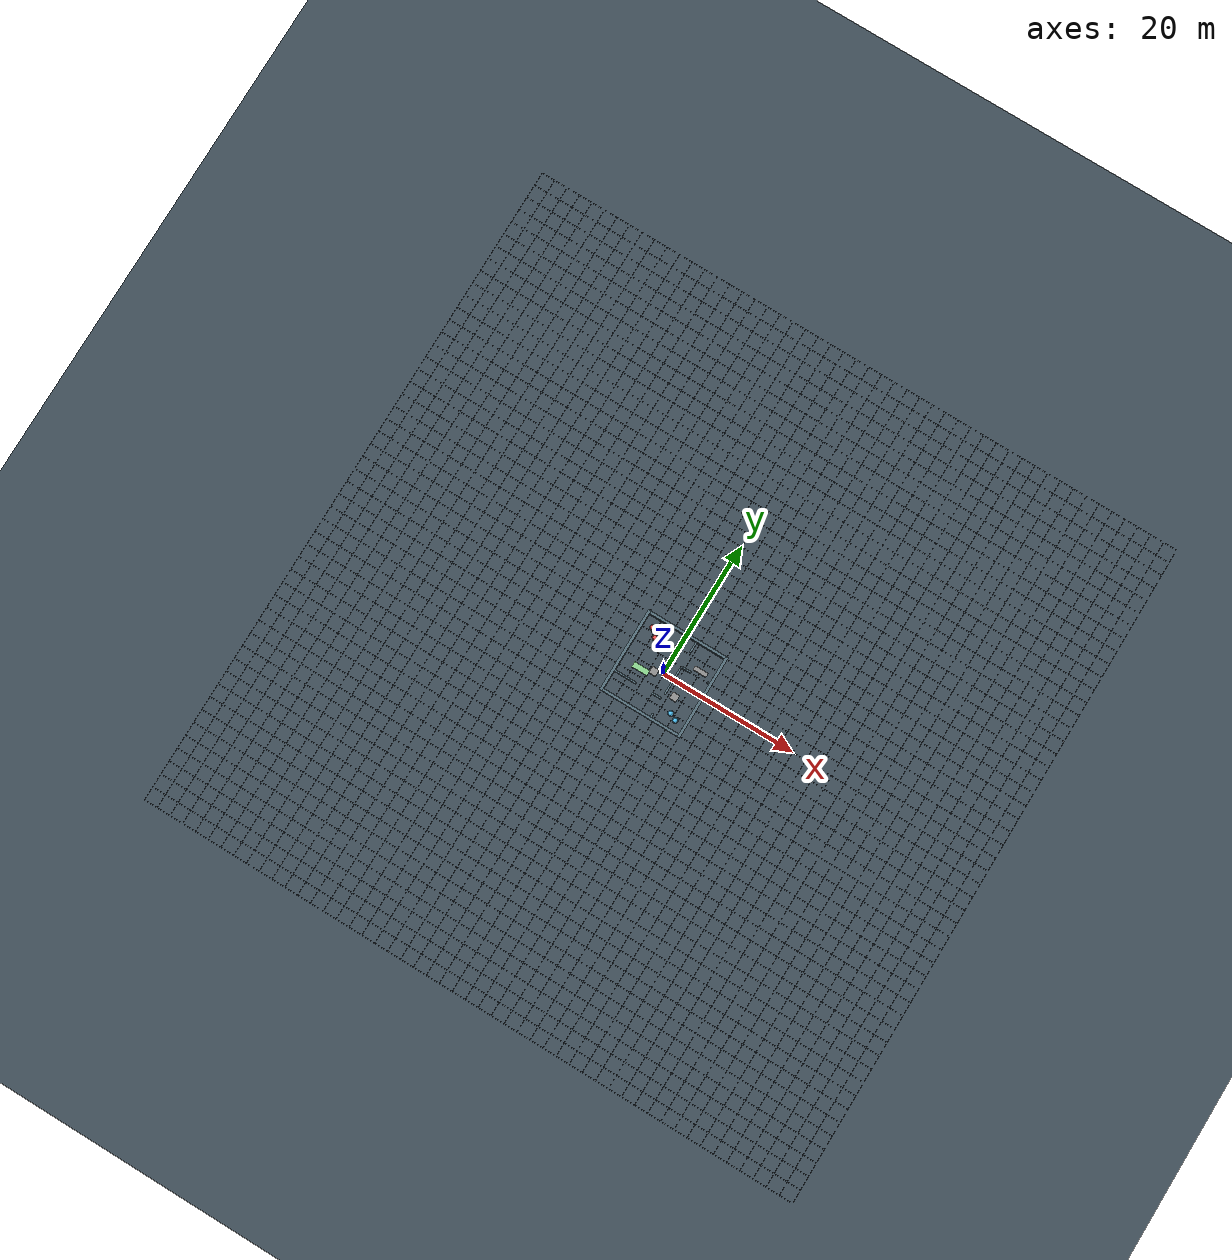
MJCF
<mujoco model="hide_and_seek">
  <compiler angle="radian" coordinate="local" inertiafromgeom="true"/>

  <option timestep="0.02" gravity="0 0 -9.81" integrator="implicitfast"
          solver="Newton" iterations="30" tolerance="1e-8" impratio="10">
    <flag warmstart="enable"/>
  </option>

  <default>
    <geom condim="6" friction="0.4 0.3 0.1" margin="0.001"/>
    <joint damping="0.5" armature="0.01"/>
    <motor ctrllimited="true" ctrlrange="-1.0 1.0"/>
  </default>

  <!-- ═══════════════════ ASSETS ═══════════════════ -->
  <asset>
    <!-- Sky: dark indigo #2a2a3e -->
    <texture type="skybox" builtin="gradient"
             rgb1="0.165 0.165 0.243" rgb2="0.06 0.06 0.10"
             width="512" height="512"/>
    <!-- Ground: uniform grey tile -->
    <texture name="groundplane" type="2d" builtin="flat"
             rgb1="0.24 0.30 0.34" rgb2="0.24 0.30 0.34"
             width="64" height="64"/>
    <material name="groundplane" texture="groundplane"
              texuniform="true" reflectance="0" shininess="0"
              specular="0" emission="0"/>
    <!-- Walls: slate #546e7a -->
    <material name="wall_mat"   rgba="0.329 0.431 0.478 1" reflectance="0.12" shininess="0.15"/>
    <!-- Hiders: cyan #4fc3f7 -->
    <material name="hider_mat"  rgba="0.310 0.765 0.969 1" reflectance="0.30" shininess="0.6" specular="0.4"/>
    <!-- Seekers: red #ef5350 -->
    <material name="seeker_mat" rgba="0.937 0.325 0.314 1" reflectance="0.30" shininess="0.6" specular="0.4"/>
    <!-- Boxes: grey #8d8d8d -->
    <material name="box_mat"    rgba="0.553 0.553 0.553 1" reflectance="0.08" shininess="0.15"/>
    <!-- Ramps: green #81c784 -->
    <material name="ramp_mat"   rgba="0.506 0.780 0.518 1" reflectance="0.08" shininess="0.15"/>
    <!-- Locked: magenta -->
    <material name="locked_mat" rgba="0.85 0.20 0.85 1" reflectance="0.20" shininess="0.4"/>
    <!-- Ramp wedge mesh (triangular prism — convex hull of 6 vertices) -->
    <mesh name="ramp_wedge_0"
          vertex="-1.2000 -0.4000 -0.2833  -1.2000  0.4000 -0.2833
                   1.2000 -0.4000 -0.2833   1.2000  0.4000 -0.2833
                   1.2000 -0.4000  0.5667   1.2000  0.4000  0.5667"/>
  </asset>

  <!-- ═══════════════════ VISUAL ═══════════════════ -->
  <visual>
    <global offwidth="1920" offheight="1080"/>
    <quality shadowsize="4096"/>
    <headlight ambient="0.35 0.35 0.38" diffuse="0.30 0.30 0.33" specular="0.08 0.08 0.08"/>
  </visual>

  <!-- ═══════════════════ WORLD ═══════════════════ -->
  <worldbody>

    <!-- Ground plane (extends far to hide skybox at horizon) -->
    <geom name="floor" type="plane" size="200 200 0.1" material="groundplane" conaffinity="1" condim="6"/>

    <!-- Tile grid lines (OpenAI-style seams) -->
    <geom name="gridY_0" type="box" pos="0 -50.00 0.002" size="50.0 0.02 0.002" rgba="0.10 0.12 0.15 1" contype="0" conaffinity="0"/>
    <geom name="gridY_1" type="box" pos="0 -48.00 0.002" size="50.0 0.02 0.002" rgba="0.10 0.12 0.15 1" contype="0" conaffinity="0"/>
    <geom name="gridY_2" type="box" pos="0 -46.00 0.002" size="50.0 0.02 0.002" rgba="0.10 0.12 0.15 1" contype="0" conaffinity="0"/>
    <geom name="gridY_3" type="box" pos="0 -44.00 0.002" size="50.0 0.02 0.002" rgba="0.10 0.12 0.15 1" contype="0" conaffinity="0"/>
    <geom name="gridY_4" type="box" pos="0 -42.00 0.002" size="50.0 0.02 0.002" rgba="0.10 0.12 0.15 1" contype="0" conaffinity="0"/>
    <geom name="gridY_5" type="box" pos="0 -40.00 0.002" size="50.0 0.02 0.002" rgba="0.10 0.12 0.15 1" contype="0" conaffinity="0"/>
    <geom name="gridY_6" type="box" pos="0 -38.00 0.002" size="50.0 0.02 0.002" rgba="0.10 0.12 0.15 1" contype="0" conaffinity="0"/>
    <geom name="gridY_7" type="box" pos="0 -36.00 0.002" size="50.0 0.02 0.002" rgba="0.10 0.12 0.15 1" contype="0" conaffinity="0"/>
    <geom name="gridY_8" type="box" pos="0 -34.00 0.002" size="50.0 0.02 0.002" rgba="0.10 0.12 0.15 1" contype="0" conaffinity="0"/>
    <geom name="gridY_9" type="box" pos="0 -32.00 0.002" size="50.0 0.02 0.002" rgba="0.10 0.12 0.15 1" contype="0" conaffinity="0"/>
    <geom name="gridY_10" type="box" pos="0 -30.00 0.002" size="50.0 0.02 0.002" rgba="0.10 0.12 0.15 1" contype="0" conaffinity="0"/>
    <geom name="gridY_11" type="box" pos="0 -28.00 0.002" size="50.0 0.02 0.002" rgba="0.10 0.12 0.15 1" contype="0" conaffinity="0"/>
    <geom name="gridY_12" type="box" pos="0 -26.00 0.002" size="50.0 0.02 0.002" rgba="0.10 0.12 0.15 1" contype="0" conaffinity="0"/>
    <geom name="gridY_13" type="box" pos="0 -24.00 0.002" size="50.0 0.02 0.002" rgba="0.10 0.12 0.15 1" contype="0" conaffinity="0"/>
    <geom name="gridY_14" type="box" pos="0 -22.00 0.002" size="50.0 0.02 0.002" rgba="0.10 0.12 0.15 1" contype="0" conaffinity="0"/>
    <geom name="gridY_15" type="box" pos="0 -20.00 0.002" size="50.0 0.02 0.002" rgba="0.10 0.12 0.15 1" contype="0" conaffinity="0"/>
    <geom name="gridY_16" type="box" pos="0 -18.00 0.002" size="50.0 0.02 0.002" rgba="0.10 0.12 0.15 1" contype="0" conaffinity="0"/>
    <geom name="gridY_17" type="box" pos="0 -16.00 0.002" size="50.0 0.02 0.002" rgba="0.10 0.12 0.15 1" contype="0" conaffinity="0"/>
    <geom name="gridY_18" type="box" pos="0 -14.00 0.002" size="50.0 0.02 0.002" rgba="0.10 0.12 0.15 1" contype="0" conaffinity="0"/>
    <geom name="gridY_19" type="box" pos="0 -12.00 0.002" size="50.0 0.02 0.002" rgba="0.10 0.12 0.15 1" contype="0" conaffinity="0"/>
    <geom name="gridY_20" type="box" pos="0 -10.00 0.002" size="50.0 0.02 0.002" rgba="0.10 0.12 0.15 1" contype="0" conaffinity="0"/>
    <geom name="gridY_21" type="box" pos="0 -8.00 0.002" size="50.0 0.02 0.002" rgba="0.10 0.12 0.15 1" contype="0" conaffinity="0"/>
    <geom name="gridY_22" type="box" pos="0 -6.00 0.002" size="50.0 0.02 0.002" rgba="0.10 0.12 0.15 1" contype="0" conaffinity="0"/>
    <geom name="gridY_23" type="box" pos="0 -4.00 0.002" size="50.0 0.02 0.002" rgba="0.10 0.12 0.15 1" contype="0" conaffinity="0"/>
    <geom name="gridY_24" type="box" pos="0 -2.00 0.002" size="50.0 0.02 0.002" rgba="0.10 0.12 0.15 1" contype="0" conaffinity="0"/>
    <geom name="gridY_25" type="box" pos="0 0.00 0.002" size="50.0 0.02 0.002" rgba="0.10 0.12 0.15 1" contype="0" conaffinity="0"/>
    <geom name="gridY_26" type="box" pos="0 2.00 0.002" size="50.0 0.02 0.002" rgba="0.10 0.12 0.15 1" contype="0" conaffinity="0"/>
    <geom name="gridY_27" type="box" pos="0 4.00 0.002" size="50.0 0.02 0.002" rgba="0.10 0.12 0.15 1" contype="0" conaffinity="0"/>
    <geom name="gridY_28" type="box" pos="0 6.00 0.002" size="50.0 0.02 0.002" rgba="0.10 0.12 0.15 1" contype="0" conaffinity="0"/>
    <geom name="gridY_29" type="box" pos="0 8.00 0.002" size="50.0 0.02 0.002" rgba="0.10 0.12 0.15 1" contype="0" conaffinity="0"/>
    <geom name="gridY_30" type="box" pos="0 10.00 0.002" size="50.0 0.02 0.002" rgba="0.10 0.12 0.15 1" contype="0" conaffinity="0"/>
    <geom name="gridY_31" type="box" pos="0 12.00 0.002" size="50.0 0.02 0.002" rgba="0.10 0.12 0.15 1" contype="0" conaffinity="0"/>
    <geom name="gridY_32" type="box" pos="0 14.00 0.002" size="50.0 0.02 0.002" rgba="0.10 0.12 0.15 1" contype="0" conaffinity="0"/>
    <geom name="gridY_33" type="box" pos="0 16.00 0.002" size="50.0 0.02 0.002" rgba="0.10 0.12 0.15 1" contype="0" conaffinity="0"/>
    <geom name="gridY_34" type="box" pos="0 18.00 0.002" size="50.0 0.02 0.002" rgba="0.10 0.12 0.15 1" contype="0" conaffinity="0"/>
    <geom name="gridY_35" type="box" pos="0 20.00 0.002" size="50.0 0.02 0.002" rgba="0.10 0.12 0.15 1" contype="0" conaffinity="0"/>
    <geom name="gridY_36" type="box" pos="0 22.00 0.002" size="50.0 0.02 0.002" rgba="0.10 0.12 0.15 1" contype="0" conaffinity="0"/>
    <geom name="gridY_37" type="box" pos="0 24.00 0.002" size="50.0 0.02 0.002" rgba="0.10 0.12 0.15 1" contype="0" conaffinity="0"/>
    <geom name="gridY_38" type="box" pos="0 26.00 0.002" size="50.0 0.02 0.002" rgba="0.10 0.12 0.15 1" contype="0" conaffinity="0"/>
    <geom name="gridY_39" type="box" pos="0 28.00 0.002" size="50.0 0.02 0.002" rgba="0.10 0.12 0.15 1" contype="0" conaffinity="0"/>
    <geom name="gridY_40" type="box" pos="0 30.00 0.002" size="50.0 0.02 0.002" rgba="0.10 0.12 0.15 1" contype="0" conaffinity="0"/>
    <geom name="gridY_41" type="box" pos="0 32.00 0.002" size="50.0 0.02 0.002" rgba="0.10 0.12 0.15 1" contype="0" conaffinity="0"/>
    <geom name="gridY_42" type="box" pos="0 34.00 0.002" size="50.0 0.02 0.002" rgba="0.10 0.12 0.15 1" contype="0" conaffinity="0"/>
    <geom name="gridY_43" type="box" pos="0 36.00 0.002" size="50.0 0.02 0.002" rgba="0.10 0.12 0.15 1" contype="0" conaffinity="0"/>
    <geom name="gridY_44" type="box" pos="0 38.00 0.002" size="50.0 0.02 0.002" rgba="0.10 0.12 0.15 1" contype="0" conaffinity="0"/>
    <geom name="gridY_45" type="box" pos="0 40.00 0.002" size="50.0 0.02 0.002" rgba="0.10 0.12 0.15 1" contype="0" conaffinity="0"/>
    <geom name="gridY_46" type="box" pos="0 42.00 0.002" size="50.0 0.02 0.002" rgba="0.10 0.12 0.15 1" contype="0" conaffinity="0"/>
    <geom name="gridY_47" type="box" pos="0 44.00 0.002" size="50.0 0.02 0.002" rgba="0.10 0.12 0.15 1" contype="0" conaffinity="0"/>
    <geom name="gridY_48" type="box" pos="0 46.00 0.002" size="50.0 0.02 0.002" rgba="0.10 0.12 0.15 1" contype="0" conaffinity="0"/>
    <geom name="gridY_49" type="box" pos="0 48.00 0.002" size="50.0 0.02 0.002" rgba="0.10 0.12 0.15 1" contype="0" conaffinity="0"/>
    <geom name="gridY_50" type="box" pos="0 50.00 0.002" size="50.0 0.02 0.002" rgba="0.10 0.12 0.15 1" contype="0" conaffinity="0"/>
    <geom name="gridX_51" type="box" pos="-50.00 0 0.002" size="0.02 50.0 0.002" rgba="0.10 0.12 0.15 1" contype="0" conaffinity="0"/>
    <geom name="gridX_52" type="box" pos="-48.00 0 0.002" size="0.02 50.0 0.002" rgba="0.10 0.12 0.15 1" contype="0" conaffinity="0"/>
    <geom name="gridX_53" type="box" pos="-46.00 0 0.002" size="0.02 50.0 0.002" rgba="0.10 0.12 0.15 1" contype="0" conaffinity="0"/>
    <geom name="gridX_54" type="box" pos="-44.00 0 0.002" size="0.02 50.0 0.002" rgba="0.10 0.12 0.15 1" contype="0" conaffinity="0"/>
    <geom name="gridX_55" type="box" pos="-42.00 0 0.002" size="0.02 50.0 0.002" rgba="0.10 0.12 0.15 1" contype="0" conaffinity="0"/>
    <geom name="gridX_56" type="box" pos="-40.00 0 0.002" size="0.02 50.0 0.002" rgba="0.10 0.12 0.15 1" contype="0" conaffinity="0"/>
    <geom name="gridX_57" type="box" pos="-38.00 0 0.002" size="0.02 50.0 0.002" rgba="0.10 0.12 0.15 1" contype="0" conaffinity="0"/>
    <geom name="gridX_58" type="box" pos="-36.00 0 0.002" size="0.02 50.0 0.002" rgba="0.10 0.12 0.15 1" contype="0" conaffinity="0"/>
    <geom name="gridX_59" type="box" pos="-34.00 0 0.002" size="0.02 50.0 0.002" rgba="0.10 0.12 0.15 1" contype="0" conaffinity="0"/>
    <geom name="gridX_60" type="box" pos="-32.00 0 0.002" size="0.02 50.0 0.002" rgba="0.10 0.12 0.15 1" contype="0" conaffinity="0"/>
    <geom name="gridX_61" type="box" pos="-30.00 0 0.002" size="0.02 50.0 0.002" rgba="0.10 0.12 0.15 1" contype="0" conaffinity="0"/>
    <geom name="gridX_62" type="box" pos="-28.00 0 0.002" size="0.02 50.0 0.002" rgba="0.10 0.12 0.15 1" contype="0" conaffinity="0"/>
    <geom name="gridX_63" type="box" pos="-26.00 0 0.002" size="0.02 50.0 0.002" rgba="0.10 0.12 0.15 1" contype="0" conaffinity="0"/>
    <geom name="gridX_64" type="box" pos="-24.00 0 0.002" size="0.02 50.0 0.002" rgba="0.10 0.12 0.15 1" contype="0" conaffinity="0"/>
    <geom name="gridX_65" type="box" pos="-22.00 0 0.002" size="0.02 50.0 0.002" rgba="0.10 0.12 0.15 1" contype="0" conaffinity="0"/>
    <geom name="gridX_66" type="box" pos="-20.00 0 0.002" size="0.02 50.0 0.002" rgba="0.10 0.12 0.15 1" contype="0" conaffinity="0"/>
    <geom name="gridX_67" type="box" pos="-18.00 0 0.002" size="0.02 50.0 0.002" rgba="0.10 0.12 0.15 1" contype="0" conaffinity="0"/>
    <geom name="gridX_68" type="box" pos="-16.00 0 0.002" size="0.02 50.0 0.002" rgba="0.10 0.12 0.15 1" contype="0" conaffinity="0"/>
    <geom name="gridX_69" type="box" pos="-14.00 0 0.002" size="0.02 50.0 0.002" rgba="0.10 0.12 0.15 1" contype="0" conaffinity="0"/>
    <geom name="gridX_70" type="box" pos="-12.00 0 0.002" size="0.02 50.0 0.002" rgba="0.10 0.12 0.15 1" contype="0" conaffinity="0"/>
    <geom name="gridX_71" type="box" pos="-10.00 0 0.002" size="0.02 50.0 0.002" rgba="0.10 0.12 0.15 1" contype="0" conaffinity="0"/>
    <geom name="gridX_72" type="box" pos="-8.00 0 0.002" size="0.02 50.0 0.002" rgba="0.10 0.12 0.15 1" contype="0" conaffinity="0"/>
    <geom name="gridX_73" type="box" pos="-6.00 0 0.002" size="0.02 50.0 0.002" rgba="0.10 0.12 0.15 1" contype="0" conaffinity="0"/>
    <geom name="gridX_74" type="box" pos="-4.00 0 0.002" size="0.02 50.0 0.002" rgba="0.10 0.12 0.15 1" contype="0" conaffinity="0"/>
    <geom name="gridX_75" type="box" pos="-2.00 0 0.002" size="0.02 50.0 0.002" rgba="0.10 0.12 0.15 1" contype="0" conaffinity="0"/>
    <geom name="gridX_76" type="box" pos="0.00 0 0.002" size="0.02 50.0 0.002" rgba="0.10 0.12 0.15 1" contype="0" conaffinity="0"/>
    <geom name="gridX_77" type="box" pos="2.00 0 0.002" size="0.02 50.0 0.002" rgba="0.10 0.12 0.15 1" contype="0" conaffinity="0"/>
    <geom name="gridX_78" type="box" pos="4.00 0 0.002" size="0.02 50.0 0.002" rgba="0.10 0.12 0.15 1" contype="0" conaffinity="0"/>
    <geom name="gridX_79" type="box" pos="6.00 0 0.002" size="0.02 50.0 0.002" rgba="0.10 0.12 0.15 1" contype="0" conaffinity="0"/>
    <geom name="gridX_80" type="box" pos="8.00 0 0.002" size="0.02 50.0 0.002" rgba="0.10 0.12 0.15 1" contype="0" conaffinity="0"/>
    <geom name="gridX_81" type="box" pos="10.00 0 0.002" size="0.02 50.0 0.002" rgba="0.10 0.12 0.15 1" contype="0" conaffinity="0"/>
    <geom name="gridX_82" type="box" pos="12.00 0 0.002" size="0.02 50.0 0.002" rgba="0.10 0.12 0.15 1" contype="0" conaffinity="0"/>
    <geom name="gridX_83" type="box" pos="14.00 0 0.002" size="0.02 50.0 0.002" rgba="0.10 0.12 0.15 1" contype="0" conaffinity="0"/>
    <geom name="gridX_84" type="box" pos="16.00 0 0.002" size="0.02 50.0 0.002" rgba="0.10 0.12 0.15 1" contype="0" conaffinity="0"/>
    <geom name="gridX_85" type="box" pos="18.00 0 0.002" size="0.02 50.0 0.002" rgba="0.10 0.12 0.15 1" contype="0" conaffinity="0"/>
    <geom name="gridX_86" type="box" pos="20.00 0 0.002" size="0.02 50.0 0.002" rgba="0.10 0.12 0.15 1" contype="0" conaffinity="0"/>
    <geom name="gridX_87" type="box" pos="22.00 0 0.002" size="0.02 50.0 0.002" rgba="0.10 0.12 0.15 1" contype="0" conaffinity="0"/>
    <geom name="gridX_88" type="box" pos="24.00 0 0.002" size="0.02 50.0 0.002" rgba="0.10 0.12 0.15 1" contype="0" conaffinity="0"/>
    <geom name="gridX_89" type="box" pos="26.00 0 0.002" size="0.02 50.0 0.002" rgba="0.10 0.12 0.15 1" contype="0" conaffinity="0"/>
    <geom name="gridX_90" type="box" pos="28.00 0 0.002" size="0.02 50.0 0.002" rgba="0.10 0.12 0.15 1" contype="0" conaffinity="0"/>
    <geom name="gridX_91" type="box" pos="30.00 0 0.002" size="0.02 50.0 0.002" rgba="0.10 0.12 0.15 1" contype="0" conaffinity="0"/>
    <geom name="gridX_92" type="box" pos="32.00 0 0.002" size="0.02 50.0 0.002" rgba="0.10 0.12 0.15 1" contype="0" conaffinity="0"/>
    <geom name="gridX_93" type="box" pos="34.00 0 0.002" size="0.02 50.0 0.002" rgba="0.10 0.12 0.15 1" contype="0" conaffinity="0"/>
    <geom name="gridX_94" type="box" pos="36.00 0 0.002" size="0.02 50.0 0.002" rgba="0.10 0.12 0.15 1" contype="0" conaffinity="0"/>
    <geom name="gridX_95" type="box" pos="38.00 0 0.002" size="0.02 50.0 0.002" rgba="0.10 0.12 0.15 1" contype="0" conaffinity="0"/>
    <geom name="gridX_96" type="box" pos="40.00 0 0.002" size="0.02 50.0 0.002" rgba="0.10 0.12 0.15 1" contype="0" conaffinity="0"/>
    <geom name="gridX_97" type="box" pos="42.00 0 0.002" size="0.02 50.0 0.002" rgba="0.10 0.12 0.15 1" contype="0" conaffinity="0"/>
    <geom name="gridX_98" type="box" pos="44.00 0 0.002" size="0.02 50.0 0.002" rgba="0.10 0.12 0.15 1" contype="0" conaffinity="0"/>
    <geom name="gridX_99" type="box" pos="46.00 0 0.002" size="0.02 50.0 0.002" rgba="0.10 0.12 0.15 1" contype="0" conaffinity="0"/>
    <geom name="gridX_100" type="box" pos="48.00 0 0.002" size="0.02 50.0 0.002" rgba="0.10 0.12 0.15 1" contype="0" conaffinity="0"/>
    <geom name="gridX_101" type="box" pos="50.00 0 0.002" size="0.02 50.0 0.002" rgba="0.10 0.12 0.15 1" contype="0" conaffinity="0"/>

    <!-- Lighting (warm key + cool fill, matching HTML mockup's #fff5e0 sun) -->
    <light name="key_light"  pos="5 -5 14" dir="-0.3 0.3 -1"
           diffuse="1.0 0.96 0.88" specular="0.45 0.43 0.40" cutoff="60" castshadow="true"/>
    <light name="fill_light" pos="-5 5 10" dir="0.3 -0.3 -1"
           diffuse="0.28 0.30 0.38" specular="0.06 0.06 0.08" cutoff="80"/>
    <light name="rim_light"  pos="0 0 16"  dir="0 0 -1"
           diffuse="0.18 0.18 0.22" specular="0.12 0.12 0.12" cutoff="100"/>

    <!-- Overview camera — shows the full arena without needing to zoom out -->
    <camera name="overview" pos="0 -12 20" xyaxes="1 0 0 0 0.55 0.84" fovy="55"/>

    <!-- ────────────── OUTER ARENA WALLS (12m × 12m, tall — 2.4m) ────────────── -->
    <!--  wall color: #546e7a → rgba="0.329 0.431 0.478 1" -->
    <body name="wall_north" pos="0 6 0.7">
      <geom type="box" size="5.80 0.2 0.7" rgba="0.329 0.431 0.478 1" conaffinity="1" condim="3"/>
    </body>
    <body name="wall_south" pos="0 -6 0.7">
      <geom type="box" size="5.80 0.2 0.7" rgba="0.329 0.431 0.478 1" conaffinity="1" condim="3"/>
    </body>
    <body name="wall_east" pos="6 0 0.7">
      <geom type="box" size="0.2 6.20 0.7" rgba="0.329 0.431 0.478 1" conaffinity="1" condim="3"/>
    </body>
    <body name="wall_west" pos="-6 0 0.7">
      <geom type="box" size="0.2 6.20 0.7" rgba="0.329 0.431 0.478 1" conaffinity="1" condim="3"/>
    </body>

    <!-- ── Vertical wall: x=1.5, y=-6 to y=6, two doors ── -->

    <!-- Seg 1: y=-6 to y=-5.25 -->
    <body name="vwall_s" pos="1.5 -5.625 0.500">
      <geom type="box" size="0.12 0.375 0.500" rgba="0.329 0.431 0.478 1" conaffinity="1" condim="3"/>
    </body>
    <!-- DOOR: y=-5.25 to y=-2.25  (3.0m gap — lower door) -->
    <!-- Seg 2: y=-2.25 to y=1.75  (shortened center, wider gap above) -->
    <body name="vwall_mid" pos="1.5 -0.25 0.500">
      <geom type="box" size="0.12 2.0 0.500" rgba="0.329 0.431 0.478 1" conaffinity="1" condim="3"/>
    </body>
    <!-- DOOR: y=1.75 to y=4.25   (2.5m gap — upper door) -->
    <!-- Seg 3: y=4.25 to y=6 -->
    <body name="vwall_n" pos="1.5 5.125 0.500">
      <geom type="box" size="0.12 0.875 0.500" rgba="0.329 0.431 0.478 1" conaffinity="1" condim="3"/>
    </body>

    <!-- ── Horizontal wall y=-3: SW room north wall, one 2.5m door ── -->

    <!-- Seg W: x=-6 to x=-2.5 -->
    <body name="hwall_sw_w" pos="-4.25 -3.0 0.500">
      <geom type="box" size="1.75 0.12 0.500" rgba="0.329 0.431 0.478 1" conaffinity="1" condim="3"/>
    </body>
    <!-- DOOR: x=-2.5 to x=0.0  (2.5m gap) -->
    <!-- Seg E: x=0.0 to x=1.38 -->
    <body name="hwall_sw_e" pos="0.69 -3.0 0.500">
      <geom type="box" size="0.69 0.12 0.500" rgba="0.329 0.431 0.478 1" conaffinity="1" condim="3"/>
    </body>

    <!-- ── Horizontal wall y=2: NE room south wall, one 2.5m door ── -->

    <!-- Seg W: x=1.62 to x=3.0 -->
    <body name="hwall_ne_w" pos="2.31 2.0 0.500">
      <geom type="box" size="0.69 0.12 0.500" rgba="0.329 0.431 0.478 1" conaffinity="1" condim="3"/>
    </body>
    <!-- DOOR: x=3.0 to x=5.5  (2.5m gap) -->
    <!-- Seg E: x=5.5 to x=6 -->
    <body name="hwall_ne_e" pos="5.75 2.0 0.500">
      <geom type="box" size="0.25 0.12 0.500" rgba="0.329 0.431 0.478 1" conaffinity="1" condim="3"/>
    </body>

    <!-- ══════════════ AGENTS ══════════════ -->

    <!-- Hider 0 — #4fc3f7 cyan, starts in SE room -->
    <body name="hider_0" pos="3.5 -4.0 0.35">
      <freejoint name="hider_0_joint"/>
      <geom name="hider_0_geom" type="sphere" size="0.35" density="11"
            rgba="0.310 0.765 0.969 1" conaffinity="1" condim="6" friction="0.3 0.1 0.05"/>
      <site name="Hider Jacob" pos="0 0 0.55" size="0.01" rgba="0.31 0.76 0.97 0.01"/>
      <geom type="cylinder" size="0.42 0.02" pos="0 0 0" mass="0" rgba="0.31 0.76 0.97 0.10" contype="0" conaffinity="0"/>
    </body>

    <!-- Hider 1 — #4fc3f7 cyan, starts in SE room -->
    <body name="hider_1" pos="4.5 -4.5 0.35">
      <freejoint name="hider_1_joint"/>
      <geom name="hider_1_geom" type="sphere" size="0.35" density="11"
            rgba="0.310 0.765 0.969 1" conaffinity="1" condim="6" friction="0.3 0.1 0.05"/>
      <site name="Hider Lucas" pos="0 0 0.55" size="0.01" rgba="0.31 0.76 0.97 0.01"/>
      <geom type="cylinder" size="0.42 0.02" pos="0 0 0" mass="0" rgba="0.31 0.76 0.97 0.10" contype="0" conaffinity="0"/>
    </body>

    <!-- Seeker 0 — #ef5350 red, starts in NW open area -->
    <body name="seeker_0" pos="-3.5 3.5 0.35">
      <freejoint name="seeker_0_joint"/>
      <geom name="seeker_0_geom" type="sphere" size="0.35" density="11"
            rgba="0.937 0.325 0.314 1" conaffinity="1" condim="6" friction="0.3 0.1 0.05"/>
      <site name="Seeker Mikael" pos="0 0 0.55" size="0.01" rgba="0.94 0.33 0.31 0.01"/>
      <geom type="cylinder" size="0.42 0.02" pos="0 0 0" mass="0" rgba="0.94 0.33 0.31 0.10" contype="0" conaffinity="0"/>
    </body>

    <!-- Seeker 1 — #ef5350 red, starts in NW open area -->
    <body name="seeker_1" pos="-4.5 4.5 0.35">
      <freejoint name="seeker_1_joint"/>
      <geom name="seeker_1_geom" type="sphere" size="0.35" density="11"
            rgba="0.937 0.325 0.314 1" conaffinity="1" condim="6" friction="0.3 0.1 0.05"/>
      <site name="Seeker Kriss" pos="0 0 0.55" size="0.01" rgba="0.94 0.33 0.31 0.01"/>
      <geom type="cylinder" size="0.42 0.02" pos="0 0 0" mass="0" rgba="0.94 0.33 0.31 0.10" contype="0" conaffinity="0"/>
    </body>

    <!-- ══════════════ MOVEABLE BOXES ══════════════ -->

    <!-- Box 0: near SE vertical-wall door — #8d8d8d grey -->
    <body name="box_0" pos="2.8 -1.9 0.3">
      <freejoint name="box_0_joint"/>
      <geom name="box_0_geom" type="box" size="0.5 0.5 0.3" mass="2.0"
            rgba="0.553 0.553 0.553 1" conaffinity="1" condim="6" friction="0.2 0.005 0.0001"/>
    </body>

    <!-- Box 1: near SW door — #8d8d8d grey -->
    <body name="box_1" pos="-1.3 -0.4 0.3">
      <freejoint name="box_1_joint"/>
      <geom name="box_1_geom" type="box" size="0.5 0.5 0.3" mass="2.0"
            rgba="0.553 0.553 0.553 1" conaffinity="1" condim="6" friction="0.2 0.005 0.0001"/>
    </body>

    <!-- Box 2 (elongated): near NE door — #8d8d8d grey -->
    <body name="box_2" pos="4.0 2.8 0.3">
      <freejoint name="box_2_joint"/>
      <geom name="box_2_geom" type="box" size="1.0 0.3 0.3" mass="2.5"
            rgba="0.553 0.553 0.553 1" conaffinity="1" condim="6" friction="0.2 0.005 0.0001"/>
    </body>

    <!-- ══════════════ RAMPS ══════════════ -->

    <!-- Ramp 0: proper wedge/triangular prism mesh, 0.85m tall back edge -->
    <body name="ramp_0" pos="-3.0 -1.0 0.2883" euler="0 0 0">
      <freejoint name="ramp_0_joint"/>
      <geom name="ramp_0_geom" type="mesh" mesh="ramp_wedge_0"
            mass="5.0" rgba="0.506 0.780 0.518 1"
            conaffinity="1" condim="6" friction="0.8 0.01 0.001"/>
    </body>

  </worldbody>

  <!-- ═══════════════════ ACTUATORS ═══════════════════ -->
  <actuator>
    <motor name="hider_0_x"  joint="hider_0_joint"  gear="50 0 0 0 0 0" ctrlrange="-1.0 1.0"/>
    <motor name="hider_0_y"  joint="hider_0_joint"  gear="0 50 0 0 0 0" ctrlrange="-1.0 1.0"/>
    <motor name="hider_1_x"  joint="hider_1_joint"  gear="50 0 0 0 0 0" ctrlrange="-1.0 1.0"/>
    <motor name="hider_1_y"  joint="hider_1_joint"  gear="0 50 0 0 0 0" ctrlrange="-1.0 1.0"/>
    <motor name="seeker_0_x" joint="seeker_0_joint"  gear="50 0 0 0 0 0" ctrlrange="-1.0 1.0"/>
    <motor name="seeker_0_y" joint="seeker_0_joint"  gear="0 50 0 0 0 0" ctrlrange="-1.0 1.0"/>
    <motor name="seeker_1_x" joint="seeker_1_joint"  gear="50 0 0 0 0 0" ctrlrange="-1.0 1.0"/>
    <motor name="seeker_1_y" joint="seeker_1_joint"  gear="0 50 0 0 0 0" ctrlrange="-1.0 1.0"/>
  </actuator>

</mujoco>
